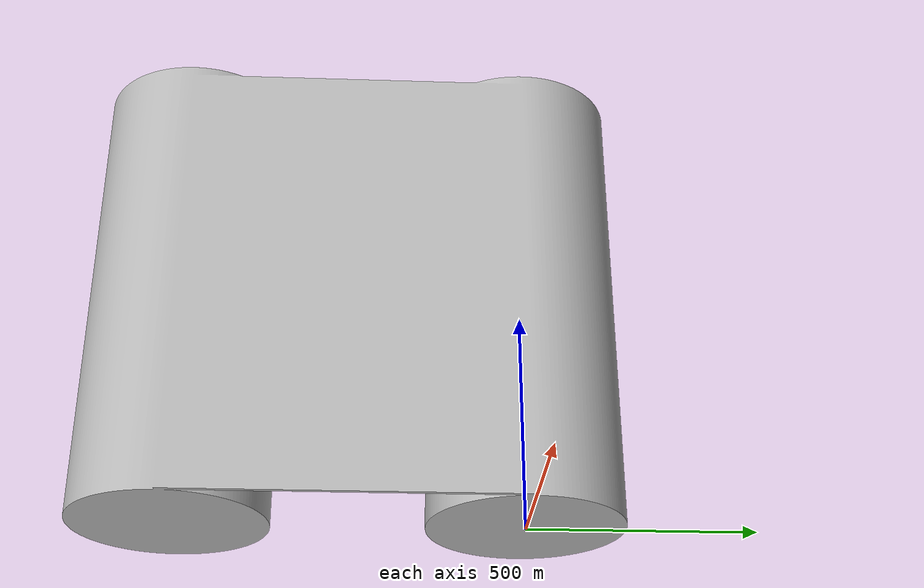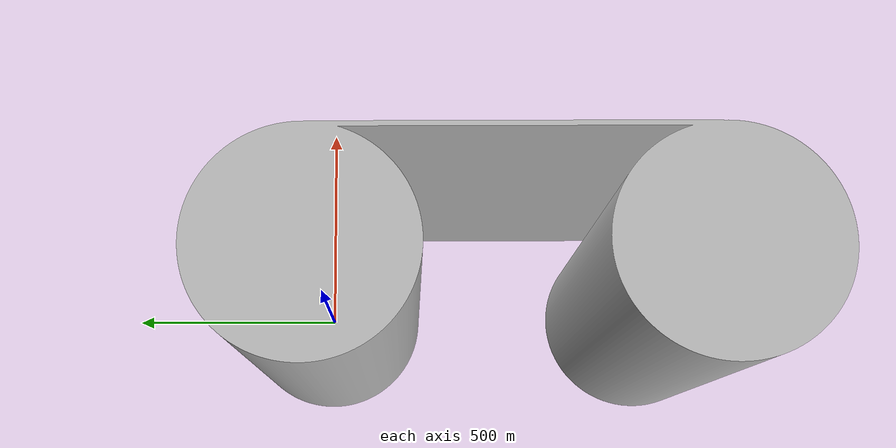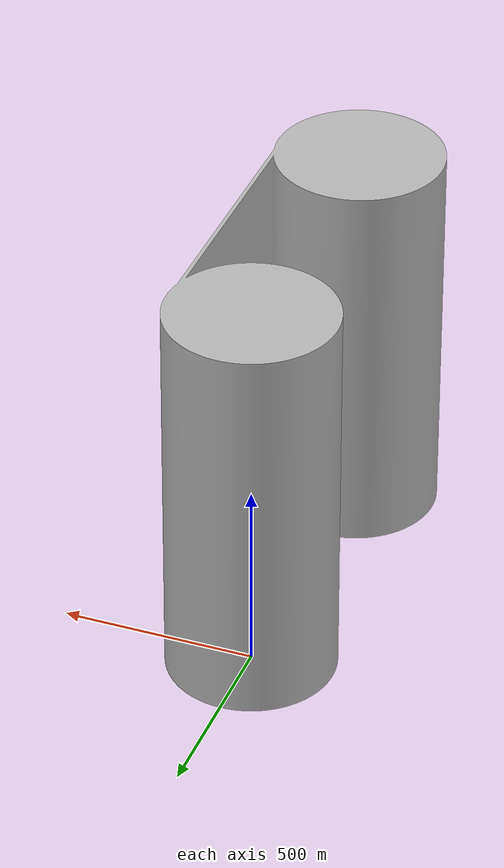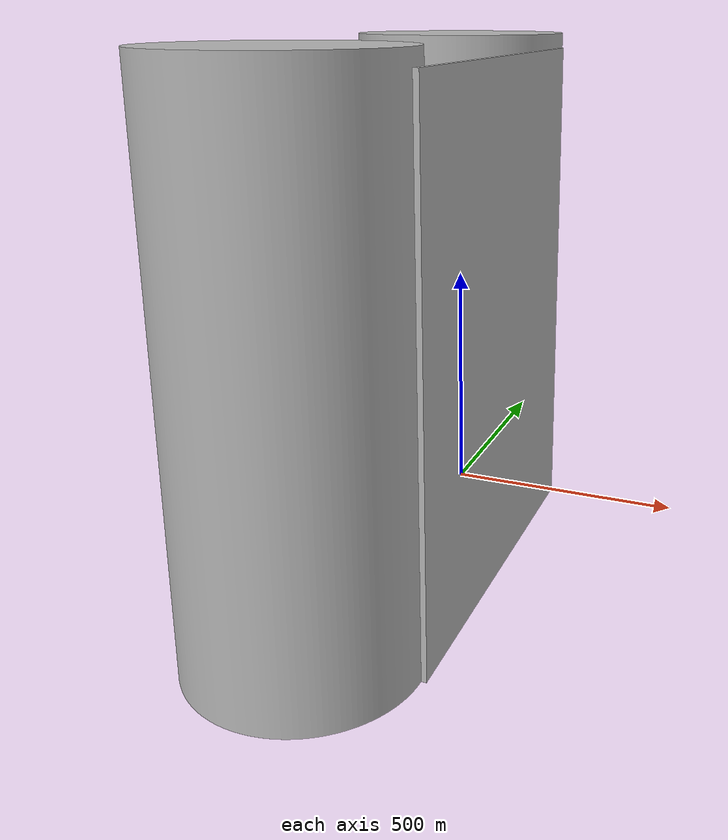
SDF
<?xml version='1.0'?>
<sdf version='1.6'>
    <model name="snapping_turtle">
        <pose>0 0 0.5 0 0 0</pose>
        <static>false</static>

        <link name="base">
            <pose>0 0 0 0 0 0</pose> <!-- Starting position -->

            <inertial>
                <mass>16.0</mass> <!-- Mass of a ~35lbs robot -->
            </inertial>

            <collision name="base_collision">
                <pose>0 0 0 0 0 0</pose>
                <geometry>
                    <box>
                        <size>1 1 1</size>
                    </box>
                </geometry>
            </collision>

            <visual name="base_visual">
                <pose>0 0 0 0 0 0</pose>
                <geometry>
                    <mesh>
                        <uri>model://snapping_turtle/meshes/badcad_snapping_turtle.stl</uri>
                    </mesh>
                </geometry>
            </visual>

        </link>

    </model>

</sdf>
